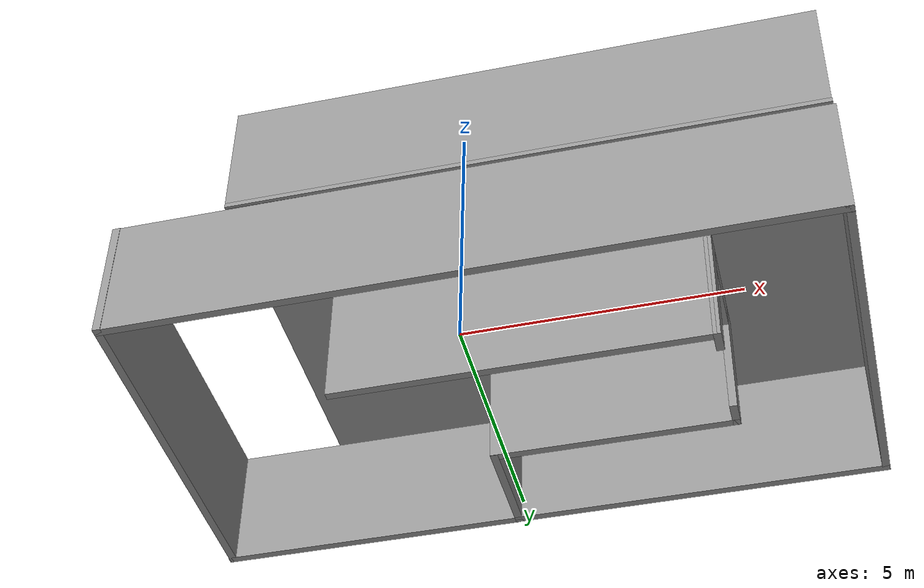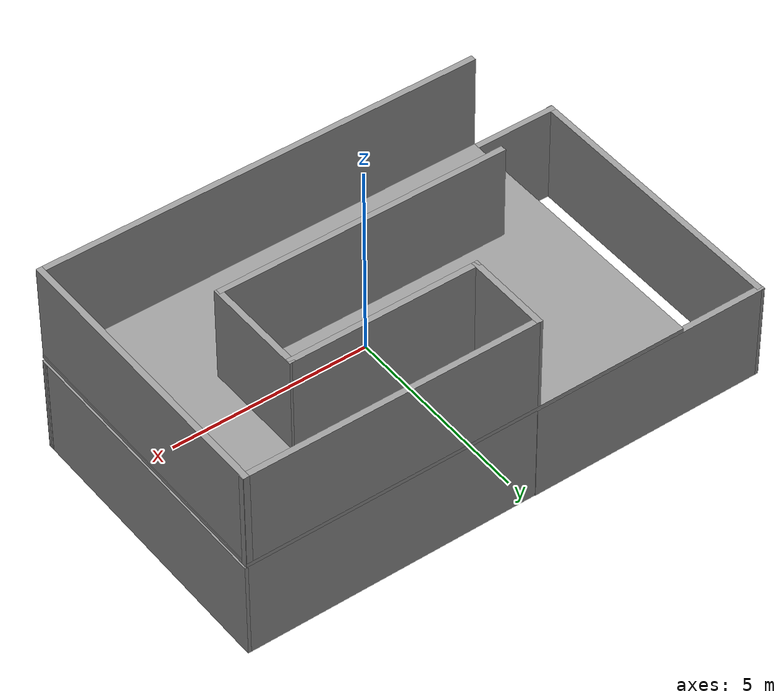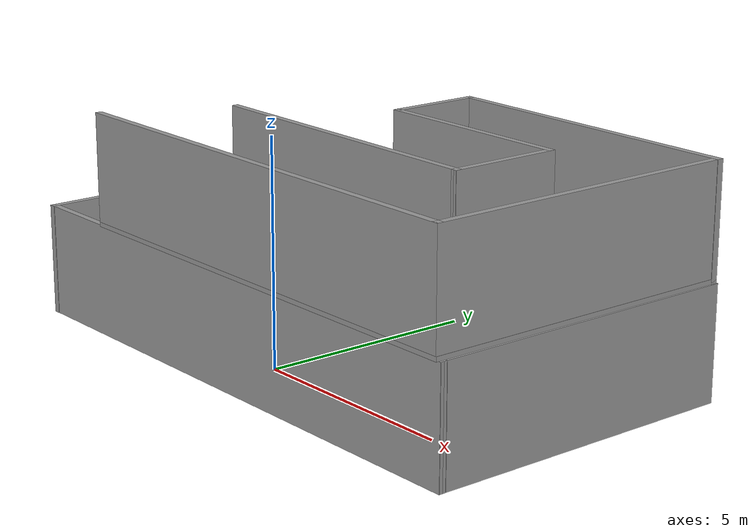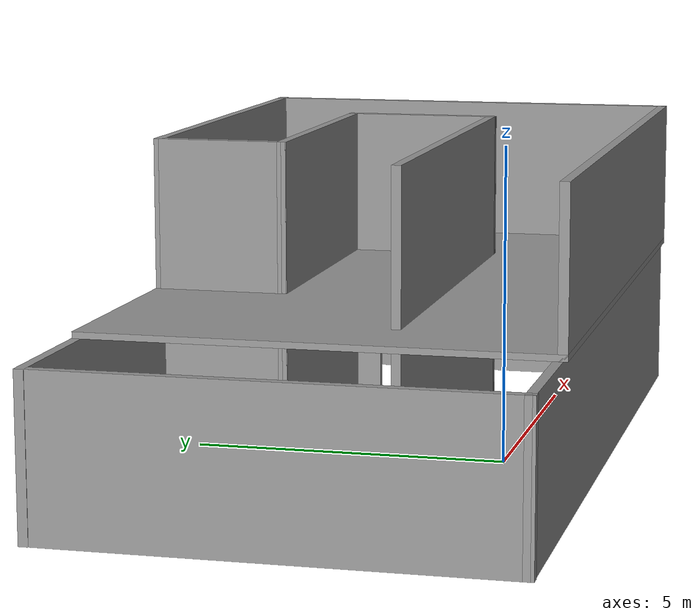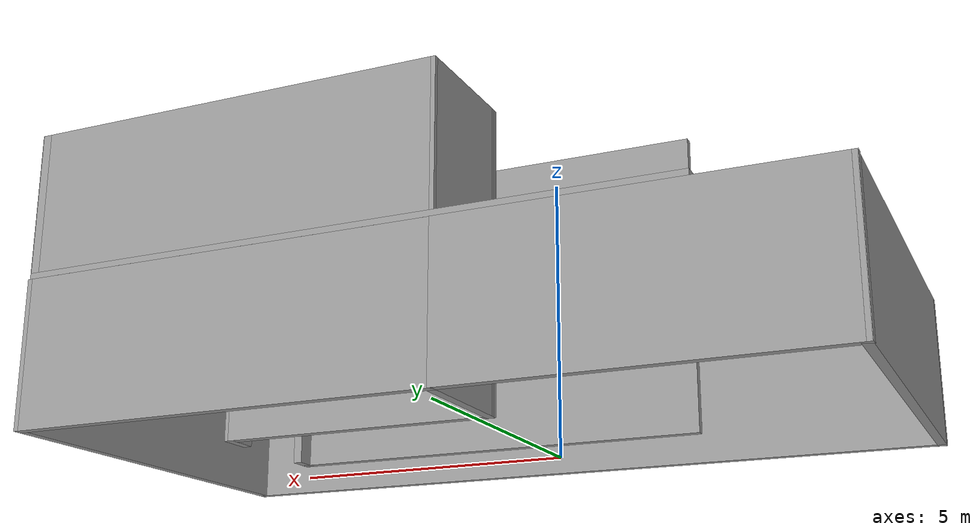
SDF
<?xml version='1.0'?>
<sdf version='1.7'>
  <model name='zoulang'>
    <pose>0.400001 2.015 0 0 -0 0</pose>
    <link name='Floor_0'>
      <collision name='Floor_0_Collision'>
        <geometry>
          <box>
            <size>11.01 7.25064 0.1</size>
          </box>
        </geometry>
        <pose>0 0 0.05 0 -0 0</pose>
      </collision>
      <visual name='Floor_0_Visual'>
        <pose>0 0 0.05 0 -0 0</pose>
        <geometry>
          <box>
            <size>11.01 7.25064 0.1</size>
          </box>
        </geometry>
        <material>
          <script>
            <uri>file://media/materials/scripts/gazebo.material</uri>
            <name>Gazebo/Grey</name>
          </script>
          <ambient>1 1 1 1</ambient>
        </material>
        <meta>
          <layer>1</layer>
        </meta>
      </visual>
      <pose>1.07 -0.034814 2.5 0 -0 0</pose>
    </link>
    <link name='Wall_1'>
      <collision name='Wall_1_Collision'>
        <geometry>
          <box>
            <size>13.25 0.15 2.5</size>
          </box>
        </geometry>
        <pose>0 0 1.25 0 -0 0</pose>
      </collision>
      <visual name='Wall_1_Visual'>
        <pose>0 0 1.25 0 -0 0</pose>
        <geometry>
          <box>
            <size>13.25 0.15 2.5</size>
          </box>
        </geometry>
        <material>
          <script>
            <uri>file://media/materials/scripts/gazebo.material</uri>
            <name>Gazebo/Grey</name>
          </script>
          <ambient>1 1 1 1</ambient>
        </material>
        <meta>
          <layer>0</layer>
        </meta>
      </visual>
      <pose>-1e-06 -3.52 0 0 -0 3.14083</pose>
    </link>
    <link name='Wall_11'>
      <collision name='Wall_11_Collision'>
        <geometry>
          <box>
            <size>7.3 0.15 2.5</size>
          </box>
        </geometry>
        <pose>0 0 1.25 0 -0 0</pose>
      </collision>
      <visual name='Wall_11_Visual'>
        <pose>0 0 1.25 0 -0 0</pose>
        <geometry>
          <box>
            <size>7.3 0.15 2.5</size>
          </box>
        </geometry>
        <material>
          <script>
            <uri>file://media/materials/scripts/gazebo.material</uri>
            <name>Gazebo/Grey</name>
          </script>
          <ambient>1 1 1 1</ambient>
        </material>
        <meta>
          <layer>0</layer>
        </meta>
      </visual>
      <pose>2.955 3.515 0 0 -0 3.14159</pose>
    </link>
    <link name='Wall_12'>
      <collision name='Wall_12_Collision'>
        <geometry>
          <box>
            <size>2.16003 0.15 2.5</size>
          </box>
        </geometry>
        <pose>0 0 1.25 0 -0 0</pose>
      </collision>
      <visual name='Wall_12_Visual'>
        <pose>0 0 1.25 0 -0 0</pose>
        <geometry>
          <box>
            <size>2.16003 0.15 2.5</size>
          </box>
        </geometry>
        <material>
          <script>
            <uri>file://media/materials/scripts/gazebo.material</uri>
            <name>Gazebo/Grey</name>
          </script>
          <ambient>1 1 1 1</ambient>
        </material>
        <meta>
          <layer>0</layer>
        </meta>
      </visual>
      <pose>-0.625001 2.51 0 0 -0 -1.57577</pose>
    </link>
    <link name='Wall_13'>
      <collision name='Wall_13_Collision'>
        <geometry>
          <box>
            <size>4.74001 0.15 2.5</size>
          </box>
        </geometry>
        <pose>0 0 1.25 0 -0 0</pose>
      </collision>
      <visual name='Wall_13_Visual'>
        <pose>0 0 1.25 0 -0 0</pose>
        <geometry>
          <box>
            <size>4.74001 0.15 2.5</size>
          </box>
        </geometry>
        <material>
          <script>
            <uri>file://media/materials/scripts/gazebo.material</uri>
            <name>Gazebo/Grey</name>
          </script>
          <ambient>1 1 1 1</ambient>
        </material>
        <meta>
          <layer>0</layer>
        </meta>
      </visual>
      <pose>1.665 1.5 0 0 -0 0.002179</pose>
    </link>
    <link name='Wall_14'>
      <pose>3.975 0.285 0 0 -0 -1.5667</pose>
      <visual name='Wall_14_Visual_0'>
        <pose>-1.01502 0 1.25 0 -0 0</pose>
        <geometry>
          <box>
            <size>0.559972 0.15 2.5</size>
          </box>
        </geometry>
        <material>
          <script>
            <uri>file://media/materials/scripts/gazebo.material</uri>
            <name>Gazebo/Grey</name>
          </script>
          <ambient>1 1 1 1</ambient>
        </material>
        <meta>
          <layer>0</layer>
        </meta>
      </visual>
      <collision name='Wall_14_Collision_0'>
        <geometry>
          <box>
            <size>0.559972 0.15 2.5</size>
          </box>
        </geometry>
        <pose>-1.01502 0 1.25 0 -0 0</pose>
      </collision>
      <visual name='Wall_14_Visual_1'>
        <pose>1.0648 0 1.25 0 -0 0</pose>
        <geometry>
          <box>
            <size>0.460423 0.15 2.5</size>
          </box>
        </geometry>
        <material>
          <script>
            <uri>file://media/materials/scripts/gazebo.material</uri>
            <name>Gazebo/Grey</name>
          </script>
          <ambient>1 1 1 1</ambient>
        </material>
        <meta>
          <layer>0</layer>
        </meta>
      </visual>
      <collision name='Wall_14_Collision_1'>
        <geometry>
          <box>
            <size>0.460423 0.15 2.5</size>
          </box>
        </geometry>
        <pose>1.0648 0 1.25 0 -0 0</pose>
      </collision>
      <visual name='Wall_14_Visual_2'>
        <pose>0.049774 0 2.25 0 -0 0</pose>
        <geometry>
          <box>
            <size>1.56963 0.15 0.5</size>
          </box>
        </geometry>
        <material>
          <script>
            <uri>file://media/materials/scripts/gazebo.material</uri>
            <name>Gazebo/Grey</name>
          </script>
          <ambient>1 1 1 1</ambient>
        </material>
        <meta>
          <layer>0</layer>
        </meta>
      </visual>
      <collision name='Wall_14_Collision_2'>
        <geometry>
          <box>
            <size>1.56963 0.15 0.5</size>
          </box>
        </geometry>
        <pose>0.049774 0 2.25 0 -0 0</pose>
      </collision>
    </link>
    <link name='Wall_17'>
      <collision name='Wall_17_Collision'>
        <geometry>
          <box>
            <size>7.24 0.15 2.5</size>
          </box>
        </geometry>
        <pose>0 0 1.25 0 -0 0</pose>
      </collision>
      <visual name='Wall_17_Visual'>
        <pose>0 0 1.25 0 -0 0</pose>
        <geometry>
          <box>
            <size>7.24 0.15 2.5</size>
          </box>
        </geometry>
        <material>
          <script>
            <uri>file://media/materials/scripts/gazebo.material</uri>
            <name>Gazebo/Grey</name>
          </script>
          <ambient>1 1 1 1</ambient>
        </material>
        <meta>
          <layer>0</layer>
        </meta>
      </visual>
      <pose>0.424999 -0.935 0 0 -0 3.14159</pose>
    </link>
    <link name='Wall_25'>
      <collision name='Wall_25_Collision'>
        <geometry>
          <box>
            <size>0.15 0.15 2.5</size>
          </box>
        </geometry>
        <pose>0 0 1.25 0 -0 0</pose>
      </collision>
      <visual name='Wall_25_Visual'>
        <pose>0 0 1.25 0 -0 0</pose>
        <geometry>
          <box>
            <size>0.15 0.15 2.5</size>
          </box>
        </geometry>
        <material>
          <script>
            <uri>file://media/materials/scripts/gazebo.material</uri>
            <name>Gazebo/Grey</name>
          </script>
          <ambient>1 1 1 1</ambient>
        </material>
        <meta>
          <layer>1</layer>
        </meta>
      </visual>
      <pose>6.49 -3.585 2.5 0 -0 0</pose>
    </link>
    <link name='Wall_26'>
      <collision name='Wall_26_Collision'>
        <geometry>
          <box>
            <size>0.15 0.15 2.5</size>
          </box>
        </geometry>
        <pose>0 0 1.25 0 -0 0</pose>
      </collision>
      <visual name='Wall_26_Visual'>
        <pose>0 0 1.25 0 -0 0</pose>
        <geometry>
          <box>
            <size>0.15 0.15 2.5</size>
          </box>
        </geometry>
        <material>
          <script>
            <uri>file://media/materials/scripts/gazebo.material</uri>
            <name>Gazebo/Grey</name>
          </script>
          <ambient>1 1 1 1</ambient>
        </material>
        <meta>
          <layer>1</layer>
        </meta>
      </visual>
      <pose>6.49 -3.585 2.5 0 -0 0</pose>
    </link>
    <link name='Wall_27'>
      <collision name='Wall_27_Collision'>
        <geometry>
          <box>
            <size>7.25 0.15 2.5</size>
          </box>
        </geometry>
        <pose>0 0 1.25 0 -0 0</pose>
      </collision>
      <visual name='Wall_27_Visual'>
        <pose>0 0 1.25 0 -0 0</pose>
        <geometry>
          <box>
            <size>7.25 0.15 2.5</size>
          </box>
        </geometry>
        <material>
          <script>
            <uri>file://media/materials/scripts/gazebo.material</uri>
            <name>Gazebo/Grey</name>
          </script>
          <ambient>1 1 1 1</ambient>
        </material>
        <meta>
          <layer>1</layer>
        </meta>
      </visual>
      <pose>6.49 -0.035 2.5 0 -0 1.5708</pose>
    </link>
    <link name='Wall_28'>
      <collision name='Wall_28_Collision'>
        <geometry>
          <box>
            <size>7.27 0.15 2.5</size>
          </box>
        </geometry>
        <pose>0 0 1.25 0 -0 0</pose>
      </collision>
      <visual name='Wall_28_Visual'>
        <pose>0 0 1.25 0 -0 0</pose>
        <geometry>
          <box>
            <size>7.27 0.15 2.5</size>
          </box>
        </geometry>
        <material>
          <script>
            <uri>file://media/materials/scripts/gazebo.material</uri>
            <name>Gazebo/Grey</name>
          </script>
          <ambient>1 1 1 1</ambient>
        </material>
        <meta>
          <layer>1</layer>
        </meta>
      </visual>
      <pose>2.94 3.515 2.5 0 -0 3.14159</pose>
    </link>
    <link name='Wall_29'>
      <collision name='Wall_29_Collision'>
        <geometry>
          <box>
            <size>2.16003 0.15 2.5</size>
          </box>
        </geometry>
        <pose>0 0 1.25 0 -0 0</pose>
      </collision>
      <visual name='Wall_29_Visual'>
        <pose>0 0 1.25 0 -0 0</pose>
        <geometry>
          <box>
            <size>2.16003 0.15 2.5</size>
          </box>
        </geometry>
        <material>
          <script>
            <uri>file://media/materials/scripts/gazebo.material</uri>
            <name>Gazebo/Grey</name>
          </script>
          <ambient>1 1 1 1</ambient>
        </material>
        <meta>
          <layer>1</layer>
        </meta>
      </visual>
      <pose>-0.625001 2.51 2.5 0 -0 -1.57577</pose>
    </link>
    <link name='Wall_30'>
      <collision name='Wall_30_Collision'>
        <geometry>
          <box>
            <size>4.74001 0.15 2.5</size>
          </box>
        </geometry>
        <pose>0 0 1.25 0 -0 0</pose>
      </collision>
      <visual name='Wall_30_Visual'>
        <pose>0 0 1.25 0 -0 0</pose>
        <geometry>
          <box>
            <size>4.74001 0.15 2.5</size>
          </box>
        </geometry>
        <material>
          <script>
            <uri>file://media/materials/scripts/gazebo.material</uri>
            <name>Gazebo/Grey</name>
          </script>
          <ambient>1 1 1 1</ambient>
        </material>
        <meta>
          <layer>1</layer>
        </meta>
      </visual>
      <pose>1.665 1.5 2.5 0 -0 0.002179</pose>
    </link>
    <link name='Wall_31'>
      <collision name='Wall_31_Collision'>
        <geometry>
          <box>
            <size>2.59002 0.15 2.5</size>
          </box>
        </geometry>
        <pose>0 0 1.25 0 -0 0</pose>
      </collision>
      <visual name='Wall_31_Visual'>
        <pose>0 0 1.25 0 -0 0</pose>
        <geometry>
          <box>
            <size>2.59002 0.15 2.5</size>
          </box>
        </geometry>
        <material>
          <script>
            <uri>file://media/materials/scripts/gazebo.material</uri>
            <name>Gazebo/Grey</name>
          </script>
          <ambient>1 1 1 1</ambient>
        </material>
        <meta>
          <layer>1</layer>
        </meta>
      </visual>
      <pose>3.975 0.285 2.5 0 -0 -1.5667</pose>
    </link>
    <link name='Wall_32'>
      <collision name='Wall_32_Collision'>
        <geometry>
          <box>
            <size>7.24 0.15 2.5</size>
          </box>
        </geometry>
        <pose>0 0 1.25 0 -0 0</pose>
      </collision>
      <visual name='Wall_32_Visual'>
        <pose>0 0 1.25 0 -0 0</pose>
        <geometry>
          <box>
            <size>7.24 0.15 2.5</size>
          </box>
        </geometry>
        <material>
          <script>
            <uri>file://media/materials/scripts/gazebo.material</uri>
            <name>Gazebo/Grey</name>
          </script>
          <ambient>1 1 1 1</ambient>
        </material>
        <meta>
          <layer>1</layer>
        </meta>
      </visual>
      <pose>0.424999 -0.935 2.5 0 -0 3.14159</pose>
    </link>
    <link name='Wall_34'>
      <collision name='Wall_34_Collision'>
        <geometry>
          <box>
            <size>11 0.15 2.5</size>
          </box>
        </geometry>
        <pose>0 0 1.25 0 -0 0</pose>
      </collision>
      <visual name='Wall_34_Visual'>
        <pose>0 0 1.25 0 -0 0</pose>
        <geometry>
          <box>
            <size>11 0.15 2.5</size>
          </box>
        </geometry>
        <material>
          <script>
            <uri>file://media/materials/scripts/gazebo.material</uri>
            <name>Gazebo/Grey</name>
          </script>
          <ambient>1 1 1 1</ambient>
        </material>
        <meta>
          <layer>1</layer>
        </meta>
      </visual>
      <pose>1.065 -3.585 2.5 0 -0 3.14159</pose>
    </link>
    <link name='Wall_4'>
      <collision name='Wall_4_Collision'>
        <geometry>
          <box>
            <size>0.15 0.15 2.5</size>
          </box>
        </geometry>
        <pose>0 0 1.25 0 -0 0</pose>
      </collision>
      <visual name='Wall_4_Visual'>
        <pose>0 0 1.25 0 -0 0</pose>
        <geometry>
          <box>
            <size>0.15 0.15 2.5</size>
          </box>
        </geometry>
        <material>
          <script>
            <uri>file://media/materials/scripts/gazebo.material</uri>
            <name>Gazebo/Grey</name>
          </script>
          <ambient>1 1 1 1</ambient>
        </material>
        <meta>
          <layer>0</layer>
        </meta>
      </visual>
      <pose>6.55 -3.515 0 0 -0 0</pose>
    </link>
    <link name='Wall_40'>
      <collision name='Wall_40_Collision'>
        <geometry>
          <box>
            <size>7.20001 0.15 2.5</size>
          </box>
        </geometry>
        <pose>0 0 1.25 0 -0 0</pose>
      </collision>
      <visual name='Wall_40_Visual'>
        <pose>0 0 1.25 0 -0 0</pose>
        <geometry>
          <box>
            <size>7.20001 0.15 2.5</size>
          </box>
        </geometry>
        <material>
          <script>
            <uri>file://media/materials/scripts/gazebo.material</uri>
            <name>Gazebo/Grey</name>
          </script>
          <ambient>1 1 1 1</ambient>
        </material>
        <meta>
          <layer>0</layer>
        </meta>
      </visual>
      <pose>-6.545 0 0 0 -0 1.56938</pose>
    </link>
    <link name='Wall_45'>
      <collision name='Wall_45_Collision'>
        <geometry>
          <box>
            <size>6 0.15 2.5</size>
          </box>
        </geometry>
        <pose>0 0 1.25 0 -0 0</pose>
      </collision>
      <visual name='Wall_45_Visual'>
        <pose>0 0 1.25 0 -0 0</pose>
        <geometry>
          <box>
            <size>6 0.15 2.5</size>
          </box>
        </geometry>
        <material>
          <script>
            <uri>file://media/materials/scripts/gazebo.material</uri>
            <name>Gazebo/Grey</name>
          </script>
          <ambient>1 1 1 1</ambient>
        </material>
        <meta>
          <layer>0</layer>
        </meta>
      </visual>
      <pose>-3.625 3.525 0 0 -0 0</pose>
    </link>
    <link name='Wall_5'>
      <collision name='Wall_5_Collision'>
        <geometry>
          <box>
            <size>0.15 0.15 2.5</size>
          </box>
        </geometry>
        <pose>0 0 1.25 0 -0 0</pose>
      </collision>
      <visual name='Wall_5_Visual'>
        <pose>0 0 1.25 0 -0 0</pose>
        <geometry>
          <box>
            <size>0.15 0.15 2.5</size>
          </box>
        </geometry>
        <material>
          <script>
            <uri>file://media/materials/scripts/gazebo.material</uri>
            <name>Gazebo/Grey</name>
          </script>
          <ambient>1 1 1 1</ambient>
        </material>
        <meta>
          <layer>0</layer>
        </meta>
      </visual>
      <pose>6.55 -3.515 0 0 -0 0</pose>
    </link>
    <link name='Wall_7'>
      <collision name='Wall_7_Collision'>
        <geometry>
          <box>
            <size>7.18001 0.15 2.5</size>
          </box>
        </geometry>
        <pose>0 0 1.25 0 -0 0</pose>
      </collision>
      <visual name='Wall_7_Visual'>
        <pose>0 0 1.25 0 -0 0</pose>
        <geometry>
          <box>
            <size>7.18001 0.15 2.5</size>
          </box>
        </geometry>
        <material>
          <script>
            <uri>file://media/materials/scripts/gazebo.material</uri>
            <name>Gazebo/Grey</name>
          </script>
          <ambient>1 1 1 1</ambient>
        </material>
        <meta>
          <layer>0</layer>
        </meta>
      </visual>
      <pose>6.545 0 0 0 -0 1.57222</pose>
    </link>
    <static>1</static>
  </model>
</sdf>
